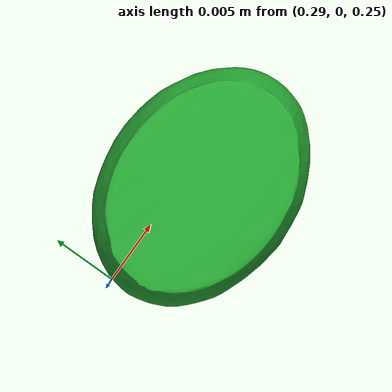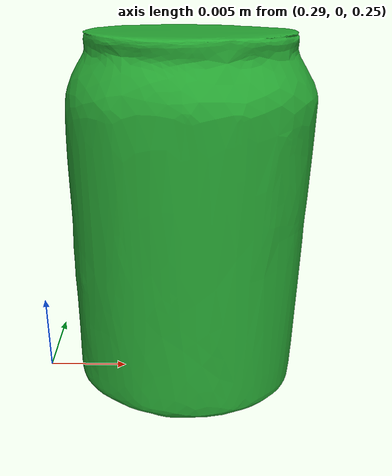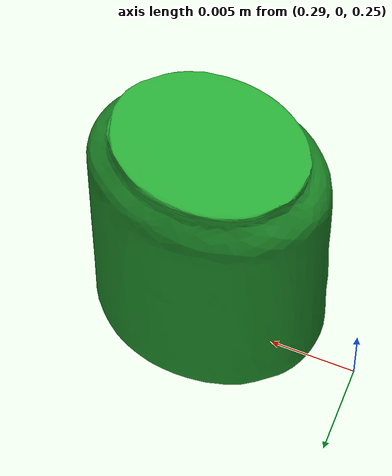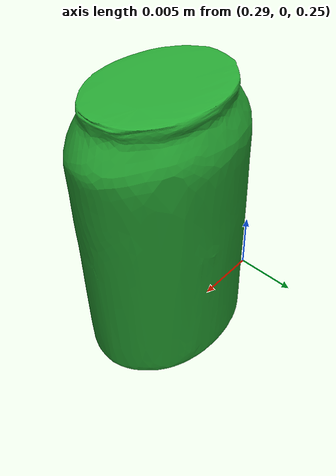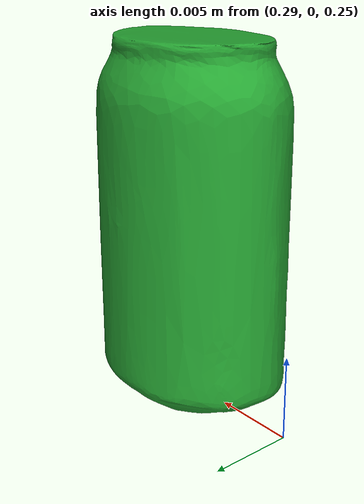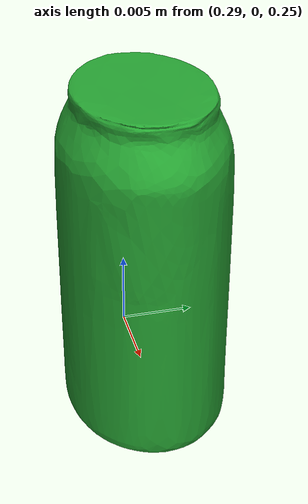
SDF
<?xml version='1.0' ?>
<sdf version='1.4'>
  <world name='empty'>
    <!-- A global light source -->
    <include>
      <uri>model://sun</uri>
    </include>

    <!-- A ground plane -->
    <include>
      <uri>model://ground_plane</uri>
    </include>

    <!-- Physics settings for simulation -->
    <physics type='ode'>
      <max_step_size>0.001</max_step_size>
      <real_time_factor>1</real_time_factor>
      <real_time_update_rate>1000</real_time_update_rate>
      <gravity>0 0 -9.81</gravity>
    </physics>

	<model name='coke_can_box_model'>
      <pose frame=''>0.30 0.0 0.2165 0 0 0</pose>
      <link name='coke_can'>
        <inertial>
          <mass>0.001</mass>
          <inertia>
            <ixx>0.00016</ixx>
            <ixy>0</ixy>
            <ixz>0</ixz>
            <iyy>0.00016</iyy>
            <iyz>0</iyz>
            <izz>0.00006</izz>
          </inertia>
        </inertial>
        <collision name='collision'>

            <geometry>
                <mesh>
                    <uri>model://coke_can/meshes/coke_can.dae</uri>
                    <scale>0.2 0.15 0.18</scale>
                </mesh>
            </geometry>
          <max_contacts>10</max_contacts>
          <surface>
                   <friction>
                     <ode>
                       <mu>100.0</mu>
                       <mu2>100.0</mu2>
                     </ode>
                   </friction>
                   <contact>
                     <ode>
                       <kp>10000000.0</kp>
                       <kd>1.0</kd>
                       <min_depth>0.001</min_depth>
                       <max_vel>0.1</max_vel>
                     </ode>
                   </contact>
           </surface>
        </collision>
        <visual name='visual'>
            <geometry>
                <mesh>
                    <uri>model://coke_can/meshes/coke_can.dae</uri>
                    <scale>0.2 0.15 0.18</scale>
                </mesh>
            </geometry>
          <material>
            <script>
              <name>Gazebo/Green</name>
              <uri>file://media/materials/scripts/gazebo.material</uri>
            </script>
          </material>
        </visual>
        <self_collide>0</self_collide>
        <kinematic>0</kinematic>
      </link>
    </model>
  </world>
</sdf>
